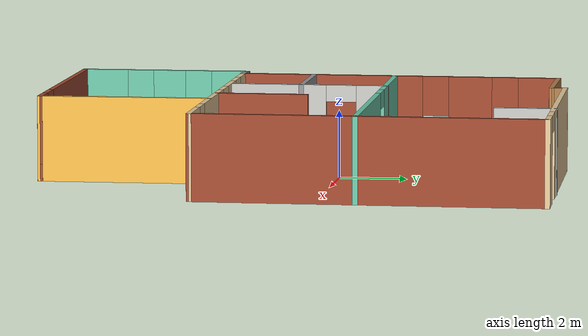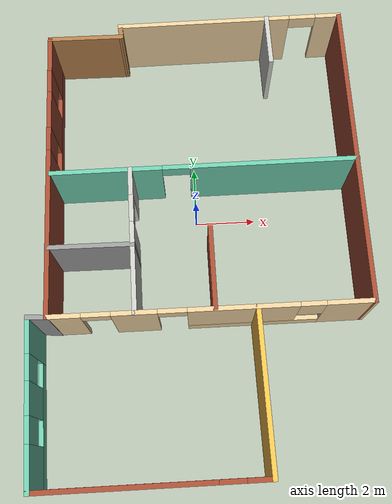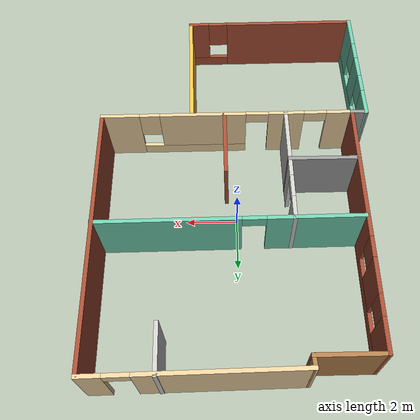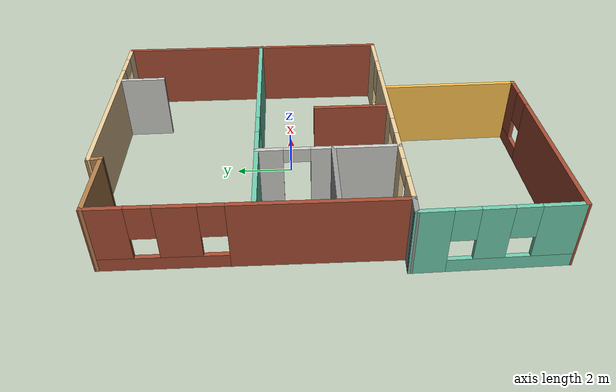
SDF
<?xml version='1.0'?>
<sdf version='1.6'>
  <model name='Myfloor'>
    <pose frame=''>0.026225 -1.02096 0 0 -0 0</pose>
    <link name='Wall_0'>
      <collision name='Wall_0_Collision'>
        <geometry>
          <box>
            <size>10.184 0.15 2.5</size>
          </box>
        </geometry>
        <pose frame=''>0 0 1.25 0 -0 0</pose>
      </collision>
      <visual name='Wall_0_Visual'>
        <pose frame=''>0 0 1.25 0 -0 0</pose>
        <geometry>
          <box>
            <size>10.184 0.15 2.5</size>
          </box>
        </geometry>
        <material>
          <script>
            <uri>file://media/materials/scripts/gazebo.material</uri>
            <name>Gazebo/Bricks</name>
          </script>
          <ambient>0.921569 0.807843 0.615686 1</ambient>
        </material>
        <meta>
          <layer>0</layer>
        </meta>
      </visual>
      <pose frame=''>5.22499 2.49707 0 0 -0 -1.56165</pose>
    </link>
    <link name='Wall_1'>
      <pose frame=''>0.284673 -2.55031 0 0 -0 -3.13546</pose>
      <visual name='Wall_1_Visual_0'>
        <pose frame=''>-4.2838 0 1.25 0 -0 0</pose>
        <geometry>
          <box>
            <size>1.55499 0.15 2.5</size>
          </box>
        </geometry>
        <material>
          <script>
            <uri>file://media/materials/scripts/gazebo.material</uri>
            <name>Gazebo/Grey</name>
          </script>
          <ambient>0.921569 0.807843 0.615686 1</ambient>
        </material>
        <meta>
          <layer>0</layer>
        </meta>
      </visual>
      <collision name='Wall_1_Collision_0'>
        <geometry>
          <box>
            <size>1.55499 0.15 2.5</size>
          </box>
        </geometry>
        <pose frame=''>-4.2838 0 1.25 0 -0 0</pose>
      </collision>
      <visual name='Wall_1_Visual_1'>
        <pose frame=''>2.345 0 1.25 0 -0 0</pose>
        <geometry>
          <box>
            <size>1.42132 0.15 2.5</size>
          </box>
        </geometry>
        <material>
          <script>
            <uri>file://media/materials/scripts/gazebo.material</uri>
            <name>Gazebo/Grey</name>
          </script>
          <ambient>0.921569 0.807843 0.615686 1</ambient>
        </material>
        <meta>
          <layer>0</layer>
        </meta>
      </visual>
      <collision name='Wall_1_Collision_1'>
        <geometry>
          <box>
            <size>1.42132 0.15 2.5</size>
          </box>
        </geometry>
        <pose frame=''>2.345 0 1.25 0 -0 0</pose>
      </collision>
      <visual name='Wall_1_Visual_2'>
        <pose frame=''>4.50848 0 1.25 0 -0 0</pose>
        <geometry>
          <box>
            <size>1.10564 0.15 2.5</size>
          </box>
        </geometry>
        <material>
          <script>
            <uri>file://media/materials/scripts/gazebo.material</uri>
            <name>Gazebo/Grey</name>
          </script>
          <ambient>0.921569 0.807843 0.615686 1</ambient>
        </material>
        <meta>
          <layer>0</layer>
        </meta>
      </visual>
      <collision name='Wall_1_Collision_2'>
        <geometry>
          <box>
            <size>1.10564 0.15 2.5</size>
          </box>
        </geometry>
        <pose frame=''>4.50848 0 1.25 0 -0 0</pose>
      </collision>
      <visual name='Wall_1_Visual_3'>
        <pose frame=''>-1.38598 0 0.25 0 -0 0</pose>
        <geometry>
          <box>
            <size>4.24065 0.15 0.5</size>
          </box>
        </geometry>
        <material>
          <script>
            <uri>file://media/materials/scripts/gazebo.material</uri>
            <name>Gazebo/Grey</name>
          </script>
          <ambient>0.921569 0.807843 0.615686 1</ambient>
        </material>
        <meta>
          <layer>0</layer>
        </meta>
      </visual>
      <collision name='Wall_1_Collision_3'>
        <geometry>
          <box>
            <size>4.24065 0.15 0.5</size>
          </box>
        </geometry>
        <pose frame=''>-1.38598 0 0.25 0 -0 0</pose>
      </collision>
      <visual name='Wall_1_Visual_4'>
        <pose frame=''>-0.985983 0 1.5 0 -0 0</pose>
        <geometry>
          <box>
            <size>3.44065 0.15 2</size>
          </box>
        </geometry>
        <material>
          <script>
            <uri>file://media/materials/scripts/gazebo.material</uri>
            <name>Gazebo/Grey</name>
          </script>
          <ambient>0.921569 0.807843 0.615686 1</ambient>
        </material>
        <meta>
          <layer>0</layer>
        </meta>
      </visual>
      <collision name='Wall_1_Collision_4'>
        <geometry>
          <box>
            <size>3.44065 0.15 2</size>
          </box>
        </geometry>
        <pose frame=''>-0.985983 0 1.5 0 -0 0</pose>
      </collision>
      <visual name='Wall_1_Visual_5'>
        <pose frame=''>-3.10631 0 1.9 0 -0 0</pose>
        <geometry>
          <box>
            <size>0.8 0.15 1.2</size>
          </box>
        </geometry>
        <material>
          <script>
            <uri>file://media/materials/scripts/gazebo.material</uri>
            <name>Gazebo/Grey</name>
          </script>
          <ambient>0.921569 0.807843 0.615686 1</ambient>
        </material>
        <meta>
          <layer>0</layer>
        </meta>
      </visual>
      <collision name='Wall_1_Collision_5'>
        <geometry>
          <box>
            <size>0.8 0.15 1.2</size>
          </box>
        </geometry>
        <pose frame=''>-3.10631 0 1.9 0 -0 0</pose>
      </collision>
      <visual name='Wall_1_Visual_6'>
        <pose frame=''>3.50567 0 2.25 0 -0 0</pose>
        <geometry>
          <box>
            <size>0.9 0.15 0.5</size>
          </box>
        </geometry>
        <material>
          <script>
            <uri>file://media/materials/scripts/gazebo.material</uri>
            <name>Gazebo/Grey</name>
          </script>
          <ambient>0.921569 0.807843 0.615686 1</ambient>
        </material>
        <meta>
          <layer>0</layer>
        </meta>
      </visual>
      <collision name='Wall_1_Collision_6'>
        <geometry>
          <box>
            <size>0.9 0.15 0.5</size>
          </box>
        </geometry>
        <pose frame=''>3.50567 0 2.25 0 -0 0</pose>
      </collision>
      <visual name='Wall_1_Visual_7'>
        <pose frame=''>1.18434 0 2.25 0 -0 0</pose>
        <geometry>
          <box>
            <size>0.9 0.15 0.5</size>
          </box>
        </geometry>
        <material>
          <script>
            <uri>file://media/materials/scripts/gazebo.material</uri>
            <name>Gazebo/Grey</name>
          </script>
          <ambient>0.921569 0.807843 0.615686 1</ambient>
        </material>
        <meta>
          <layer>0</layer>
        </meta>
      </visual>
      <collision name='Wall_1_Collision_7'>
        <geometry>
          <box>
            <size>0.9 0.15 0.5</size>
          </box>
        </geometry>
        <pose frame=''>1.18434 0 2.25 0 -0 0</pose>
      </collision>
    </link>
    <link name='Wall_13'>
      <pose frame=''>-2.07077 -0.210162 0 0 -0 -1.55773</pose>
      <visual name='Wall_13_Visual_0'>
        <pose frame=''>-1.94102 0 1.25 0 -0 0</pose>
        <geometry>
          <box>
            <size>0.948664 0.15 2.5</size>
          </box>
        </geometry>
        <material>
          <script>
            <uri>file://media/materials/scripts/gazebo.material</uri>
            <name>Gazebo/CeilingTiled</name>
          </script>
          <ambient>0.435294 0.796078 0.67451 1</ambient>
        </material>
        <meta>
          <layer>0</layer>
        </meta>
      </visual>
      <collision name='Wall_13_Collision_0'>
        <geometry>
          <box>
            <size>0.948664 0.15 2.5</size>
          </box>
        </geometry>
        <pose frame=''>-1.94102 0 1.25 0 -0 0</pose>
      </collision>
      <visual name='Wall_13_Visual_1'>
        <pose frame=''>0.924332 0 1.25 0 -0 0</pose>
        <geometry>
          <box>
            <size>2.98204 0.15 2.5</size>
          </box>
        </geometry>
        <material>
          <script>
            <uri>file://media/materials/scripts/gazebo.material</uri>
            <name>Gazebo/CeilingTiled</name>
          </script>
          <ambient>0.435294 0.796078 0.67451 1</ambient>
        </material>
        <meta>
          <layer>0</layer>
        </meta>
      </visual>
      <collision name='Wall_13_Collision_1'>
        <geometry>
          <box>
            <size>2.98204 0.15 2.5</size>
          </box>
        </geometry>
        <pose frame=''>0.924332 0 1.25 0 -0 0</pose>
      </collision>
      <visual name='Wall_13_Visual_2'>
        <pose frame=''>-1.01669 0 2.25 0 -0 0</pose>
        <geometry>
          <box>
            <size>0.9 0.15 0.5</size>
          </box>
        </geometry>
        <material>
          <script>
            <uri>file://media/materials/scripts/gazebo.material</uri>
            <name>Gazebo/CeilingTiled</name>
          </script>
          <ambient>0.435294 0.796078 0.67451 1</ambient>
        </material>
        <meta>
          <layer>0</layer>
        </meta>
      </visual>
      <collision name='Wall_13_Collision_2'>
        <geometry>
          <box>
            <size>0.9 0.15 0.5</size>
          </box>
        </geometry>
        <pose frame=''>-1.01669 0 2.25 0 -0 0</pose>
      </collision>
    </link>
    <link name='Wall_15'>
      <collision name='Wall_15_Collision'>
        <geometry>
          <box>
            <size>2.75035 0.15 2.5</size>
          </box>
        </geometry>
        <pose frame=''>0 0 1.25 0 -0 0</pose>
      </collision>
      <visual name='Wall_15_Visual'>
        <pose frame=''>0 0 1.25 0 -0 0</pose>
        <geometry>
          <box>
            <size>2.75035 0.15 2.5</size>
          </box>
        </geometry>
        <material>
          <script>
            <uri>file://media/materials/scripts/gazebo.material</uri>
            <name>Gazebo/Bricks</name>
          </script>
          <ambient>0.435294 0.796078 0.67451 1</ambient>
        </material>
        <meta>
          <layer>0</layer>
        </meta>
      </visual>
      <pose frame=''>0.391739 -1.21964 0 0 -0 1.58256</pose>
    </link>
    <link name='Wall_17'>
      <collision name='Wall_17_Collision'>
        <geometry>
          <box>
            <size>0.732019 0.15 2.5</size>
          </box>
        </geometry>
        <pose frame=''>0 0 1.25 0 -0 0</pose>
      </collision>
      <visual name='Wall_17_Visual'>
        <pose frame=''>0 0 1.25 0 -0 0</pose>
        <geometry>
          <box>
            <size>0.732019 0.15 2.5</size>
          </box>
        </geometry>
        <material>
          <script>
            <uri>file://media/materials/scripts/gazebo.material</uri>
            <name>Gazebo/Grey</name>
          </script>
          <ambient>1 1 1 1</ambient>
        </material>
        <meta>
          <layer>0</layer>
        </meta>
      </visual>
      <pose frame=''>-4.97712 -2.57295 0 0 -0 3.08901</pose>
    </link>
    <link name='Wall_18'>
      <pose frame=''>-5.20654 -5.06605 0 0 -0 -1.54641</pose>
      <visual name='Wall_18_Visual_0'>
        <pose frame=''>-2.00143 0 1.25 0 -0 0</pose>
        <geometry>
          <box>
            <size>1.16543 0.15 2.5</size>
          </box>
        </geometry>
        <material>
          <script>
            <uri>file://media/materials/scripts/gazebo.material</uri>
            <name>Gazebo/Grey</name>
          </script>
          <ambient>0.435294 0.796078 0.67451 1</ambient>
        </material>
        <meta>
          <layer>0</layer>
        </meta>
      </visual>
      <collision name='Wall_18_Collision_0'>
        <geometry>
          <box>
            <size>1.16543 0.15 2.5</size>
          </box>
        </geometry>
        <pose frame=''>-2.00143 0 1.25 0 -0 0</pose>
      </collision>
      <visual name='Wall_18_Visual_1'>
        <pose frame=''>0.582715 0 0.25 0 -0 0</pose>
        <geometry>
          <box>
            <size>4.00286 0.15 0.5</size>
          </box>
        </geometry>
        <material>
          <script>
            <uri>file://media/materials/scripts/gazebo.material</uri>
            <name>Gazebo/Grey</name>
          </script>
          <ambient>0.435294 0.796078 0.67451 1</ambient>
        </material>
        <meta>
          <layer>0</layer>
        </meta>
      </visual>
      <collision name='Wall_18_Collision_1'>
        <geometry>
          <box>
            <size>4.00286 0.15 0.5</size>
          </box>
        </geometry>
        <pose frame=''>0.582715 0 0.25 0 -0 0</pose>
      </collision>
      <visual name='Wall_18_Visual_2'>
        <pose frame=''>-0.121923 0 1.5 0 -0 0</pose>
        <geometry>
          <box>
            <size>0.993584 0.15 2</size>
          </box>
        </geometry>
        <material>
          <script>
            <uri>file://media/materials/scripts/gazebo.material</uri>
            <name>Gazebo/Grey</name>
          </script>
          <ambient>0.435294 0.796078 0.67451 1</ambient>
        </material>
        <meta>
          <layer>0</layer>
        </meta>
      </visual>
      <collision name='Wall_18_Collision_2'>
        <geometry>
          <box>
            <size>0.993584 0.15 2</size>
          </box>
        </geometry>
        <pose frame=''>-0.121923 0 1.5 0 -0 0</pose>
      </collision>
      <visual name='Wall_18_Visual_3'>
        <pose frame=''>1.87951 0 1.5 0 -0 0</pose>
        <geometry>
          <box>
            <size>1.40928 0.15 2</size>
          </box>
        </geometry>
        <material>
          <script>
            <uri>file://media/materials/scripts/gazebo.material</uri>
            <name>Gazebo/Grey</name>
          </script>
          <ambient>0.435294 0.796078 0.67451 1</ambient>
        </material>
        <meta>
          <layer>0</layer>
        </meta>
      </visual>
      <collision name='Wall_18_Collision_3'>
        <geometry>
          <box>
            <size>1.40928 0.15 2</size>
          </box>
        </geometry>
        <pose frame=''>1.87951 0 1.5 0 -0 0</pose>
      </collision>
      <visual name='Wall_18_Visual_4'>
        <pose frame=''>-1.01872 0 1.9 0 -0 0</pose>
        <geometry>
          <box>
            <size>0.8 0.15 1.2</size>
          </box>
        </geometry>
        <material>
          <script>
            <uri>file://media/materials/scripts/gazebo.material</uri>
            <name>Gazebo/Grey</name>
          </script>
          <ambient>0.435294 0.796078 0.67451 1</ambient>
        </material>
        <meta>
          <layer>0</layer>
        </meta>
      </visual>
      <collision name='Wall_18_Collision_4'>
        <geometry>
          <box>
            <size>0.8 0.15 1.2</size>
          </box>
        </geometry>
        <pose frame=''>-1.01872 0 1.9 0 -0 0</pose>
      </collision>
      <visual name='Wall_18_Visual_5'>
        <pose frame=''>0.774869 0 1.9 0 -0 0</pose>
        <geometry>
          <box>
            <size>0.8 0.15 1.2</size>
          </box>
        </geometry>
        <material>
          <script>
            <uri>file://media/materials/scripts/gazebo.material</uri>
            <name>Gazebo/Grey</name>
          </script>
          <ambient>0.435294 0.796078 0.67451 1</ambient>
        </material>
        <meta>
          <layer>0</layer>
        </meta>
      </visual>
      <collision name='Wall_18_Collision_5'>
        <geometry>
          <box>
            <size>0.8 0.15 1.2</size>
          </box>
        </geometry>
        <pose frame=''>0.774869 0 1.9 0 -0 0</pose>
      </collision>
    </link>
    <link name='Wall_19'>
      <pose frame=''>-1.65808 -7.54386 0 0 -0 0.008772</pose>
      <visual name='Wall_19_Visual_0'>
        <pose frame=''>-0.828318 0 1.25 0 -0 0</pose>
        <geometry>
          <box>
            <size>5.46821 0.15 2.5</size>
          </box>
        </geometry>
        <material>
          <script>
            <uri>file://media/materials/scripts/gazebo.material</uri>
            <name>Gazebo/Bricks</name>
          </script>
          <ambient>1 0.764706 0.305882 1</ambient>
        </material>
        <meta>
          <layer>0</layer>
        </meta>
      </visual>
      <collision name='Wall_19_Collision_0'>
        <geometry>
          <box>
            <size>5.46821 0.15 2.5</size>
          </box>
        </geometry>
        <pose frame=''>-0.828318 0 1.25 0 -0 0</pose>
      </collision>
      <visual name='Wall_19_Visual_1'>
        <pose frame=''>2.7341 0 0.25 0 -0 0</pose>
        <geometry>
          <box>
            <size>1.65664 0.15 0.5</size>
          </box>
        </geometry>
        <material>
          <script>
            <uri>file://media/materials/scripts/gazebo.material</uri>
            <name>Gazebo/Bricks</name>
          </script>
          <ambient>1 0.764706 0.305882 1</ambient>
        </material>
        <meta>
          <layer>0</layer>
        </meta>
      </visual>
      <collision name='Wall_19_Collision_1'>
        <geometry>
          <box>
            <size>1.65664 0.15 0.5</size>
          </box>
        </geometry>
        <pose frame=''>2.7341 0 0.25 0 -0 0</pose>
      </collision>
      <visual name='Wall_19_Visual_2'>
        <pose frame=''>3.1341 0 1.5 0 -0 0</pose>
        <geometry>
          <box>
            <size>0.856636 0.15 2</size>
          </box>
        </geometry>
        <material>
          <script>
            <uri>file://media/materials/scripts/gazebo.material</uri>
            <name>Gazebo/Bricks</name>
          </script>
          <ambient>1 0.764706 0.305882 1</ambient>
        </material>
        <meta>
          <layer>0</layer>
        </meta>
      </visual>
      <collision name='Wall_19_Collision_2'>
        <geometry>
          <box>
            <size>0.856636 0.15 2</size>
          </box>
        </geometry>
        <pose frame=''>3.1341 0 1.5 0 -0 0</pose>
      </collision>
      <visual name='Wall_19_Visual_3'>
        <pose frame=''>2.30578 0 1.9 0 -0 0</pose>
        <geometry>
          <box>
            <size>0.8 0.15 1.2</size>
          </box>
        </geometry>
        <material>
          <script>
            <uri>file://media/materials/scripts/gazebo.material</uri>
            <name>Gazebo/Bricks</name>
          </script>
          <ambient>1 0.764706 0.305882 1</ambient>
        </material>
        <meta>
          <layer>0</layer>
        </meta>
      </visual>
      <collision name='Wall_19_Collision_3'>
        <geometry>
          <box>
            <size>0.8 0.15 1.2</size>
          </box>
        </geometry>
        <pose frame=''>2.30578 0 1.9 0 -0 0</pose>
      </collision>
    </link>
    <link name='Wall_2'>
      <pose frame=''>-4.71683 2.23706 0 0 -0 1.57397</pose>
      <visual name='Wall_2_Visual_0'>
        <pose frame=''>-2.09547 0 1.25 0 -0 0</pose>
        <geometry>
          <box>
            <size>5.59503 0.15 2.5</size>
          </box>
        </geometry>
        <material>
          <script>
            <uri>file://media/materials/scripts/gazebo.material</uri>
            <name>Gazebo/Bricks</name>
          </script>
          <ambient>0.921569 0.807843 0.615686 1</ambient>
        </material>
        <meta>
          <layer>0</layer>
        </meta>
      </visual>
      <collision name='Wall_2_Collision_0'>
        <geometry>
          <box>
            <size>5.59503 0.15 2.5</size>
          </box>
        </geometry>
        <pose frame=''>-2.09547 0 1.25 0 -0 0</pose>
      </collision>
      <visual name='Wall_2_Visual_1'>
        <pose frame=''>2.79751 0 0.25 0 -0 0</pose>
        <geometry>
          <box>
            <size>4.19095 0.15 0.5</size>
          </box>
        </geometry>
        <material>
          <script>
            <uri>file://media/materials/scripts/gazebo.material</uri>
            <name>Gazebo/Bricks</name>
          </script>
          <ambient>0.921569 0.807843 0.615686 1</ambient>
        </material>
        <meta>
          <layer>0</layer>
        </meta>
      </visual>
      <collision name='Wall_2_Collision_1'>
        <geometry>
          <box>
            <size>4.19095 0.15 0.5</size>
          </box>
        </geometry>
        <pose frame=''>2.79751 0 0.25 0 -0 0</pose>
      </collision>
      <visual name='Wall_2_Visual_2'>
        <pose frame=''>2.15745 0 1.5 0 -0 0</pose>
        <geometry>
          <box>
            <size>1.31083 0.15 2</size>
          </box>
        </geometry>
        <material>
          <script>
            <uri>file://media/materials/scripts/gazebo.material</uri>
            <name>Gazebo/Bricks</name>
          </script>
          <ambient>0.921569 0.807843 0.615686 1</ambient>
        </material>
        <meta>
          <layer>0</layer>
        </meta>
      </visual>
      <collision name='Wall_2_Collision_2'>
        <geometry>
          <box>
            <size>1.31083 0.15 2</size>
          </box>
        </geometry>
        <pose frame=''>2.15745 0 1.5 0 -0 0</pose>
      </collision>
      <visual name='Wall_2_Visual_3'>
        <pose frame=''>4.25293 0 1.5 0 -0 0</pose>
        <geometry>
          <box>
            <size>1.28012 0.15 2</size>
          </box>
        </geometry>
        <material>
          <script>
            <uri>file://media/materials/scripts/gazebo.material</uri>
            <name>Gazebo/Bricks</name>
          </script>
          <ambient>0.921569 0.807843 0.615686 1</ambient>
        </material>
        <meta>
          <layer>0</layer>
        </meta>
      </visual>
      <collision name='Wall_2_Collision_3'>
        <geometry>
          <box>
            <size>1.28012 0.15 2</size>
          </box>
        </geometry>
        <pose frame=''>4.25293 0 1.5 0 -0 0</pose>
      </collision>
      <visual name='Wall_2_Visual_4'>
        <pose frame=''>1.10204 0 1.9 0 -0 0</pose>
        <geometry>
          <box>
            <size>0.8 0.15 1.2</size>
          </box>
        </geometry>
        <material>
          <script>
            <uri>file://media/materials/scripts/gazebo.material</uri>
            <name>Gazebo/Bricks</name>
          </script>
          <ambient>0.921569 0.807843 0.615686 1</ambient>
        </material>
        <meta>
          <layer>0</layer>
        </meta>
      </visual>
      <collision name='Wall_2_Collision_4'>
        <geometry>
          <box>
            <size>0.8 0.15 1.2</size>
          </box>
        </geometry>
        <pose frame=''>1.10204 0 1.9 0 -0 0</pose>
      </collision>
      <visual name='Wall_2_Visual_5'>
        <pose frame=''>3.21287 0 1.9 0 -0 0</pose>
        <geometry>
          <box>
            <size>0.8 0.15 1.2</size>
          </box>
        </geometry>
        <material>
          <script>
            <uri>file://media/materials/scripts/gazebo.material</uri>
            <name>Gazebo/Bricks</name>
          </script>
          <ambient>0.921569 0.807843 0.615686 1</ambient>
        </material>
        <meta>
          <layer>0</layer>
        </meta>
      </visual>
      <collision name='Wall_2_Collision_5'>
        <geometry>
          <box>
            <size>0.8 0.15 1.2</size>
          </box>
        </geometry>
        <pose frame=''>3.21287 0 1.9 0 -0 0</pose>
      </collision>
    </link>
    <link name='Wall_20'>
      <collision name='Wall_20_Collision'>
        <geometry>
          <box>
            <size>5.10647 0.15 2.5</size>
          </box>
        </geometry>
        <pose frame=''>0 0 1.25 0 -0 0</pose>
      </collision>
      <visual name='Wall_20_Visual'>
        <pose frame=''>0 0 1.25 0 -0 0</pose>
        <geometry>
          <box>
            <size>5.10647 0.15 2.5</size>
          </box>
        </geometry>
        <material>
          <script>
            <uri>file://media/materials/scripts/gazebo.material</uri>
            <name>Gazebo/Grey</name>
          </script>
          <ambient>1 0.764706 0.305882 1</ambient>
        </material>
        <meta>
          <layer>0</layer>
        </meta>
      </visual>
      <pose frame=''>1.76803 -5.03546 0 0 -0 1.59548</pose>
    </link>
    <link name='Wall_22'>
      <collision name='Wall_22_Collision'>
        <geometry>
          <box>
            <size>1.80378 0.15 2.5</size>
          </box>
        </geometry>
        <pose frame=''>0 0 1.25 0 -0 0</pose>
      </collision>
      <visual name='Wall_22_Visual'>
        <pose frame=''>0 0 1.25 0 -0 0</pose>
        <geometry>
          <box>
            <size>1.80378 0.15 2.5</size>
          </box>
        </geometry>
        <material>
          <script>
            <uri>file://media/materials/scripts/gazebo.material</uri>
            <name>Gazebo/CeilingTiled</name>
          </script>
          <ambient>0.435294 0.796078 0.67451 1</ambient>
        </material>
        <meta>
          <layer>0</layer>
        </meta>
      </visual>
      <pose frame=''>2.70626 6.73391 0 0 -0 -1.54952</pose>
    </link>
    <link name='Wall_24'>
      <collision name='Wall_24_Collision'>
        <geometry>
          <box>
            <size>2.78841 0.15 2.5</size>
          </box>
        </geometry>
        <pose frame=''>0 0 1.25 0 -0 0</pose>
      </collision>
      <visual name='Wall_24_Visual'>
        <pose frame=''>0 0 1.25 0 -0 0</pose>
        <geometry>
          <box>
            <size>2.78841 0.15 2.5</size>
          </box>
        </geometry>
        <material>
          <script>
            <uri>file://media/materials/scripts/gazebo.material</uri>
            <name>Gazebo/Grey</name>
          </script>
          <ambient>1 1 1 1</ambient>
        </material>
        <meta>
          <layer>0</layer>
        </meta>
      </visual>
      <pose frame=''>-3.37967 -0.389789 0 0 -0 3.14159</pose>
    </link>
    <link name='Wall_3'>
      <collision name='Wall_3_Collision'>
        <geometry>
          <box>
            <size>2.56682 0.15 2.5</size>
          </box>
        </geometry>
        <pose frame=''>0 0 1.25 0 -0 0</pose>
      </collision>
      <visual name='Wall_3_Visual'>
        <pose frame=''>0 0 1.25 0 -0 0</pose>
        <geometry>
          <box>
            <size>2.56682 0.15 2.5</size>
          </box>
        </geometry>
        <material>
          <script>
            <uri>file://media/materials/scripts/gazebo.material</uri>
            <name>Gazebo/Wood</name>
          </script>
          <ambient>0.921569 0.807843 0.615686 1</ambient>
        </material>
        <meta>
          <layer>0</layer>
        </meta>
      </visual>
      <pose frame=''>-3.52381 7.05502 0 0 -0 0</pose>
    </link>
    <link name='Wall_4'>
      <collision name='Wall_4_Collision'>
        <geometry>
          <box>
            <size>0.548848 0.15 2.5</size>
          </box>
        </geometry>
        <pose frame=''>0 0 1.25 0 -0 0</pose>
      </collision>
      <visual name='Wall_4_Visual'>
        <pose frame=''>0 0 1.25 0 -0 0</pose>
        <geometry>
          <box>
            <size>0.548848 0.15 2.5</size>
          </box>
        </geometry>
        <material>
          <script>
            <uri>file://media/materials/scripts/gazebo.material</uri>
            <name>Gazebo/Wood</name>
          </script>
          <ambient>1 1 1 1</ambient>
        </material>
        <meta>
          <layer>0</layer>
        </meta>
      </visual>
      <pose frame=''>-2.33079 7.25385 0 0 -0 1.64757</pose>
    </link>
    <link name='Wall_5'>
      <pose frame=''>1.41651 7.51387 0 0 -0 0.016259</pose>
      <visual name='Wall_5_Visual_0'>
        <pose frame=''>-0.894305 0 1.25 0 -0 0</pose>
        <geometry>
          <box>
            <size>5.88715 0.15 2.5</size>
          </box>
        </geometry>
        <material>
          <script>
            <uri>file://media/materials/scripts/gazebo.material</uri>
            <name>Gazebo/Grey</name>
          </script>
          <ambient>0.921569 0.807843 0.615686 1</ambient>
        </material>
        <meta>
          <layer>0</layer>
        </meta>
      </visual>
      <collision name='Wall_5_Collision_0'>
        <geometry>
          <box>
            <size>5.88715 0.15 2.5</size>
          </box>
        </geometry>
        <pose frame=''>-0.894305 0 1.25 0 -0 0</pose>
      </collision>
      <visual name='Wall_5_Visual_1'>
        <pose frame=''>3.39357 0 1.25 0 -0 0</pose>
        <geometry>
          <box>
            <size>0.888611 0.15 2.5</size>
          </box>
        </geometry>
        <material>
          <script>
            <uri>file://media/materials/scripts/gazebo.material</uri>
            <name>Gazebo/Grey</name>
          </script>
          <ambient>0.921569 0.807843 0.615686 1</ambient>
        </material>
        <meta>
          <layer>0</layer>
        </meta>
      </visual>
      <collision name='Wall_5_Collision_1'>
        <geometry>
          <box>
            <size>0.888611 0.15 2.5</size>
          </box>
        </geometry>
        <pose frame=''>3.39357 0 1.25 0 -0 0</pose>
      </collision>
      <visual name='Wall_5_Visual_2'>
        <pose frame=''>2.49927 0 2.25 0 -0 0</pose>
        <geometry>
          <box>
            <size>0.9 0.15 0.5</size>
          </box>
        </geometry>
        <material>
          <script>
            <uri>file://media/materials/scripts/gazebo.material</uri>
            <name>Gazebo/Grey</name>
          </script>
          <ambient>0.921569 0.807843 0.615686 1</ambient>
        </material>
        <meta>
          <layer>0</layer>
        </meta>
      </visual>
      <collision name='Wall_5_Collision_2'>
        <geometry>
          <box>
            <size>0.9 0.15 0.5</size>
          </box>
        </geometry>
        <pose frame=''>2.49927 0 2.25 0 -0 0</pose>
      </collision>
    </link>
    <link name='Wall_9'>
      <pose frame=''>0.299968 2.14529 0 0 -0 0.009288</pose>
      <visual name='Wall_9_Visual_0'>
        <pose frame=''>-3.19246 0 1.25 0 -0 0</pose>
        <geometry>
          <box>
            <size>3.64614 0.15 2.5</size>
          </box>
        </geometry>
        <material>
          <script>
            <uri>file://media/materials/scripts/gazebo.material</uri>
            <name>Gazebo/Grey</name>
          </script>
          <ambient>0.435294 0.796078 0.67451 1</ambient>
        </material>
        <meta>
          <layer>0</layer>
        </meta>
      </visual>
      <collision name='Wall_9_Collision_0'>
        <geometry>
          <box>
            <size>3.64614 0.15 2.5</size>
          </box>
        </geometry>
        <pose frame=''>-3.19246 0 1.25 0 -0 0</pose>
      </collision>
      <visual name='Wall_9_Visual_1'>
        <pose frame=''>2.27307 0 1.25 0 -0 0</pose>
        <geometry>
          <box>
            <size>5.48493 0.15 2.5</size>
          </box>
        </geometry>
        <material>
          <script>
            <uri>file://media/materials/scripts/gazebo.material</uri>
            <name>Gazebo/Grey</name>
          </script>
          <ambient>0.435294 0.796078 0.67451 1</ambient>
        </material>
        <meta>
          <layer>0</layer>
        </meta>
      </visual>
      <collision name='Wall_9_Collision_1'>
        <geometry>
          <box>
            <size>5.48493 0.15 2.5</size>
          </box>
        </geometry>
        <pose frame=''>2.27307 0 1.25 0 -0 0</pose>
      </collision>
      <visual name='Wall_9_Visual_2'>
        <pose frame=''>-0.919391 0 2.25 0 -0 0</pose>
        <geometry>
          <box>
            <size>0.9 0.15 0.5</size>
          </box>
        </geometry>
        <material>
          <script>
            <uri>file://media/materials/scripts/gazebo.material</uri>
            <name>Gazebo/Grey</name>
          </script>
          <ambient>0.435294 0.796078 0.67451 1</ambient>
        </material>
        <meta>
          <layer>0</layer>
        </meta>
      </visual>
      <collision name='Wall_9_Collision_2'>
        <geometry>
          <box>
            <size>0.9 0.15 0.5</size>
          </box>
        </geometry>
        <pose frame=''>-0.919391 0 2.25 0 -0 0</pose>
      </collision>
    </link>
    <static>1</static>
  </model>
</sdf>
